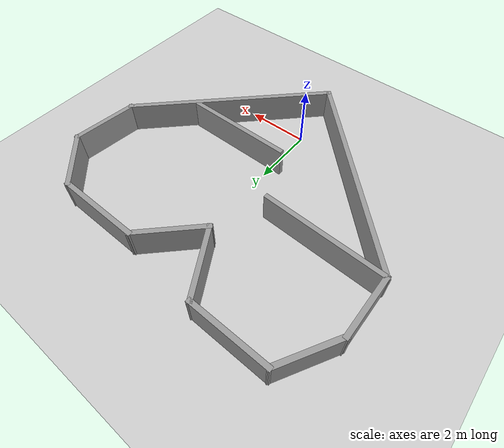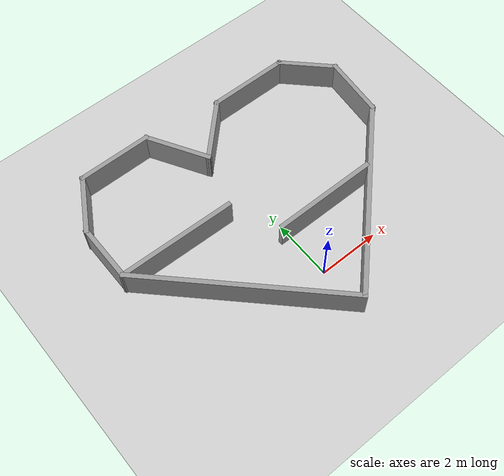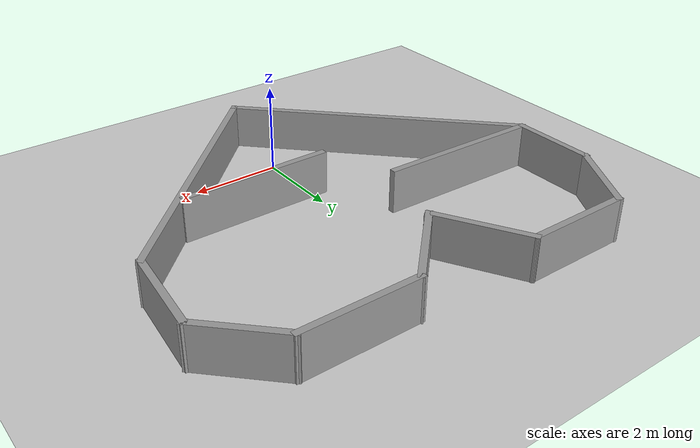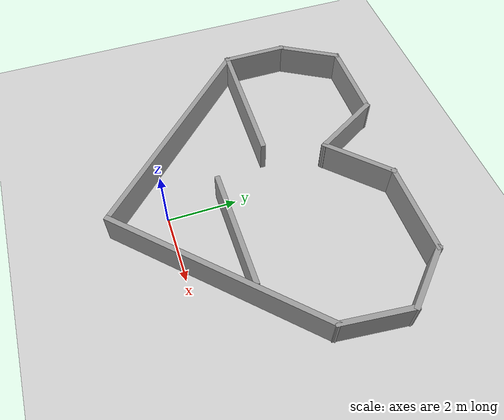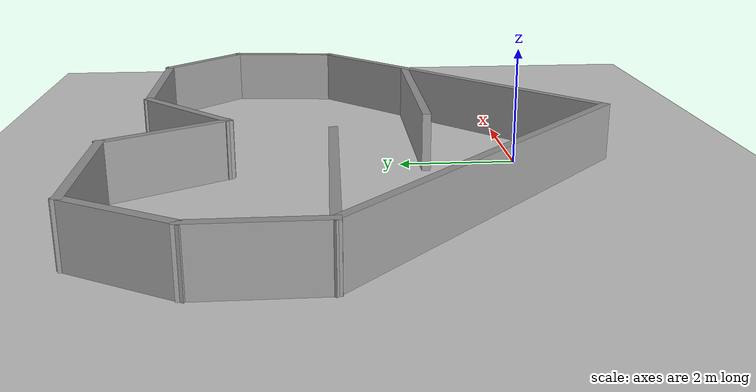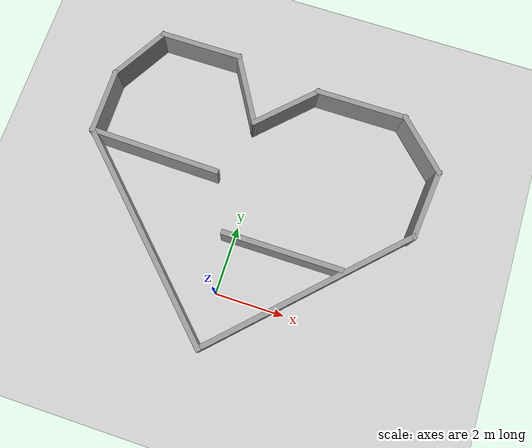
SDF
<sdf version="1.7">
 <world name="default">
  <light name="sun" type="directional">
   <pose>0 0 10 0 -0 0</pose>
   <diffuse>0.8 0.8 0.8 1</diffuse>
   <specular>0.2 0.2 0.2 1</specular>
   <attenuation>
    <range>1000</range>
    <constant>0.9</constant>
    <linear>0.01</linear>
    <quadratic>0.001</quadratic>
   </attenuation>
   <direction>-0.5 0.1 -0.9</direction>
   <spot><inner_angle>0</inner_angle><outer_angle>0</outer_angle><falloff>0</falloff></spot>
  </light>
  <model name="ground_plane">
   <static>1</static>
   <link name="link">
    <collision name="collision">
     <geometry><plane><normal>0 0 1</normal><size>100 100</size></plane></geometry>
     <surface>
      <contact><collide_bitmask>65535</collide_bitmask></contact>
      <friction><ode><mu>100</mu><mu2>50</mu2></ode></friction>
     </surface>
    </collision>
    <visual name="visual">
     <cast_shadows>0</cast_shadows>
     <geometry><plane><normal>0 0 1</normal><size>100 100</size></plane></geometry>
     <material>
      <script><uri>file://media/materials/scripts/gazebo.material</uri><name>Gazebo/Grey</name></script>
     </material>
    </visual>
   </link>
  </model>
  <gravity>0 0 -9.8</gravity>
  <magnetic_field>6e-06 2.3e-05 -4.2e-05</magnetic_field>
  <atmosphere type="adiabatic"/>
  <physics type="ode">
   <max_step_size>0.001</max_step_size>
   <real_time_factor>1</real_time_factor>
   <real_time_update_rate>1000</real_time_update_rate>
  </physics>
  <scene><ambient>0.4 0.4 0.4 1</ambient><background>0.7 0.7 0.7 1</background><shadows>1</shadows></scene>
  <audio><device>default</device></audio>
  <spherical_coordinates>
   <surface_model>EARTH_WGS84</surface_model>
   <latitude_deg>0</latitude_deg>
   <longitude_deg>0</longitude_deg>
   <elevation>0</elevation>
   <heading_deg>0</heading_deg>
  </spherical_coordinates>
  <model name="syda">
   <pose>0.073448 2.56732 0 0 -0 0</pose>
   <link name="Wall_0">
    <collision name="Wall_0_Collision">
     <geometry><box><size>6.75 0.15 1</size></box></geometry>
     <pose>0 0 0.5 0 -0 0</pose>
    </collision>
    <visual name="Wall_0_Visual">
     <pose>0 0 0.5 0 -0 0</pose>
     <geometry><box><size>6.75 0.15 1</size></box></geometry>
     <material>
      <script><uri>file://media/materials/scripts/gazebo.material</uri><name>Gazebo/Grey</name></script>
      <ambient>1 1 1 1</ambient>
     </material>
     <meta><layer>0</layer></meta>
    </visual>
    <pose>2.31838 -1.81274 0 0 -0 -2.35619</pose>
   </link>
   <link name="Wall_1">
    <collision name="Wall_1_Collision">
     <geometry><box><size>7 0.15 1</size></box></geometry>
     <pose>0 0 0.5 0 -0 0</pose>
    </collision>
    <visual name="Wall_1_Visual">
     <pose>0 0 0.5 0 -0 0</pose>
     <geometry><box><size>7 0.15 1</size></box></geometry>
     <material>
      <script><uri>file://media/materials/scripts/gazebo.material</uri><name>Gazebo/Grey</name></script>
      <ambient>1 1 1 1</ambient>
     </material>
     <meta><layer>0</layer></meta>
    </visual>
    <pose>-2.43712 -1.72424 0 0 -0 2.35619</pose>
   </link>
   <link name="Wall_11">
    <collision name="Wall_11_Collision">
     <geometry><box><size>3.8969 0.15 1</size></box></geometry>
     <pose>0 0 0.5 0 -0 0</pose>
    </collision>
    <visual name="Wall_11_Visual">
     <pose>0 0 0.5 0 -0 0</pose>
     <geometry><box><size>3.8969 0.15 1</size></box></geometry>
     <material>
      <script><uri>file://media/materials/scripts/gazebo.material</uri><name>Gazebo/Grey</name></script>
      <ambient>1 1 1 1</ambient>
     </material>
     <meta><layer>0</layer></meta>
    </visual>
    <pose>-2.98612 0.655256 0 0 -0 3.11891</pose>
   </link>
   <link name="Wall_13">
    <collision name="Wall_13_Collision">
     <geometry><box><size>3.5 0.15 1</size></box></geometry>
     <pose>0 0 0.5 0 -0 0</pose>
    </collision>
    <visual name="Wall_13_Visual">
     <pose>0 0 0.5 0 -0 0</pose>
     <geometry><box><size>3.5 0.15 1</size></box></geometry>
     <material>
      <script><uri>file://media/materials/scripts/gazebo.material</uri><name>Gazebo/Grey</name></script>
      <ambient>1 1 1 1</ambient>
     </material>
     <meta><layer>0</layer></meta>
    </visual>
    <pose>1.32688 -0.977244 0 0 -0 0</pose>
   </link>
   <link name="Wall_2">
    <collision name="Wall_2_Collision">
     <geometry><box><size>2 0.15 1</size></box></geometry>
     <pose>0 0 0.5 0 -0 0</pose>
    </collision>
    <visual name="Wall_2_Visual">
     <pose>0 0 0.5 0 -0 0</pose>
     <geometry><box><size>2 0.15 1</size></box></geometry>
     <material>
      <script><uri>file://media/materials/scripts/gazebo.material</uri><name>Gazebo/Grey</name></script>
      <ambient>1 1 1 1</ambient>
     </material>
     <meta><layer>0</layer></meta>
    </visual>
    <pose>-4.85912 1.62276 0 0 -0 1.5708</pose>
   </link>
   <link name="Wall_3">
    <collision name="Wall_3_Collision">
     <geometry><box><size>2 0.15 1</size></box></geometry>
     <pose>0 0 0.5 0 -0 0</pose>
    </collision>
    <visual name="Wall_3_Visual">
     <pose>0 0 0.5 0 -0 0</pose>
     <geometry><box><size>2 0.15 1</size></box></geometry>
     <material>
      <script><uri>file://media/materials/scripts/gazebo.material</uri><name>Gazebo/Grey</name></script>
      <ambient>1 1 1 1</ambient>
     </material>
     <meta><layer>0</layer></meta>
    </visual>
    <pose>-4.39662 3.34876 0 0 -0 1.04716</pose>
   </link>
   <link name="Wall_4">
    <collision name="Wall_4_Collision">
     <geometry><box><size>2.5 0.15 1</size></box></geometry>
     <pose>0 0 0.5 0 -0 0</pose>
    </collision>
    <visual name="Wall_4_Visual">
     <pose>0 0 0.5 0 -0 0</pose>
     <geometry><box><size>2.5 0.15 1</size></box></geometry>
     <material>
      <script><uri>file://media/materials/scripts/gazebo.material</uri><name>Gazebo/Grey</name></script>
      <ambient>1 1 1 1</ambient>
     </material>
     <meta><layer>0</layer></meta>
    </visual>
    <pose>-2.75912 4.14976 0 0 -0 0</pose>
   </link>
   <link name="Wall_5">
    <collision name="Wall_5_Collision">
     <geometry><box><size>2.25 0.15 1</size></box></geometry>
     <pose>0 0 0.5 0 -0 0</pose>
    </collision>
    <visual name="Wall_5_Visual">
     <pose>0 0 0.5 0 -0 0</pose>
     <geometry><box><size>2.25 0.15 1</size></box></geometry>
     <material>
      <script><uri>file://media/materials/scripts/gazebo.material</uri><name>Gazebo/Grey</name></script>
      <ambient>1 1 1 1</ambient>
     </material>
     <meta><layer>0</layer></meta>
    </visual>
    <pose>-1.05912 3.24025 0 0 -0 -1.04728</pose>
   </link>
   <link name="Wall_6">
    <collision name="Wall_6_Collision">
     <geometry><box><size>2.25 0.15 1</size></box></geometry>
     <pose>0 0 0.5 0 -0 0</pose>
    </collision>
    <visual name="Wall_6_Visual">
     <pose>0 0 0.5 0 -0 0</pose>
     <geometry><box><size>2.25 0.15 1</size></box></geometry>
     <material>
      <script><uri>file://media/materials/scripts/gazebo.material</uri><name>Gazebo/Grey</name></script>
      <ambient>1 1 1 1</ambient>
     </material>
     <meta><layer>0</layer></meta>
    </visual>
    <pose>0.208384 3.07326 0 0 -0 0.785398</pose>
   </link>
   <link name="Wall_7">
    <collision name="Wall_7_Collision">
     <geometry><box><size>2.75 0.15 1</size></box></geometry>
     <pose>0 0 0.5 0 -0 0</pose>
    </collision>
    <visual name="Wall_7_Visual">
     <pose>0 0 0.5 0 -0 0</pose>
     <geometry><box><size>2.75 0.15 1</size></box></geometry>
     <material>
      <script><uri>file://media/materials/scripts/gazebo.material</uri><name>Gazebo/Grey</name></script>
      <ambient>1 1 1 1</ambient>
     </material>
     <meta><layer>0</layer></meta>
    </visual>
    <pose>2.25088 3.81575 0 0 -0 0</pose>
   </link>
   <link name="Wall_8">
    <collision name="Wall_8_Collision">
     <geometry><box><size>2 0.15 1</size></box></geometry>
     <pose>0 0 0.5 0 -0 0</pose>
    </collision>
    <visual name="Wall_8_Visual">
     <pose>0 0 0.5 0 -0 0</pose>
     <geometry><box><size>2 0.15 1</size></box></geometry>
     <material>
      <script><uri>file://media/materials/scripts/gazebo.material</uri><name>Gazebo/Grey</name></script>
      <ambient>1 1 1 1</ambient>
     </material>
     <meta><layer>0</layer></meta>
    </visual>
    <pose>4.20488 3.16176 0 0 -0 -0.785398</pose>
   </link>
   <link name="Wall_9">
    <collision name="Wall_9_Collision">
     <geometry><box><size>2.14785 0.15 1</size></box></geometry>
     <pose>0 0 0.5 0 -0 0</pose>
    </collision>
    <visual name="Wall_9_Visual">
     <pose>0 0 0.5 0 -0 0</pose>
     <geometry><box><size>2.14785 0.15 1</size></box></geometry>
     <material>
      <script><uri>file://media/materials/scripts/gazebo.material</uri><name>Gazebo/Grey</name></script>
      <ambient>1 1 1 1</ambient>
     </material>
     <meta><layer>0</layer></meta>
    </visual>
    <pose>4.75538 1.51426 0 0 -0 -1.6746</pose>
   </link>
   <static>1</static>
  </model>
 </world>
</sdf>
